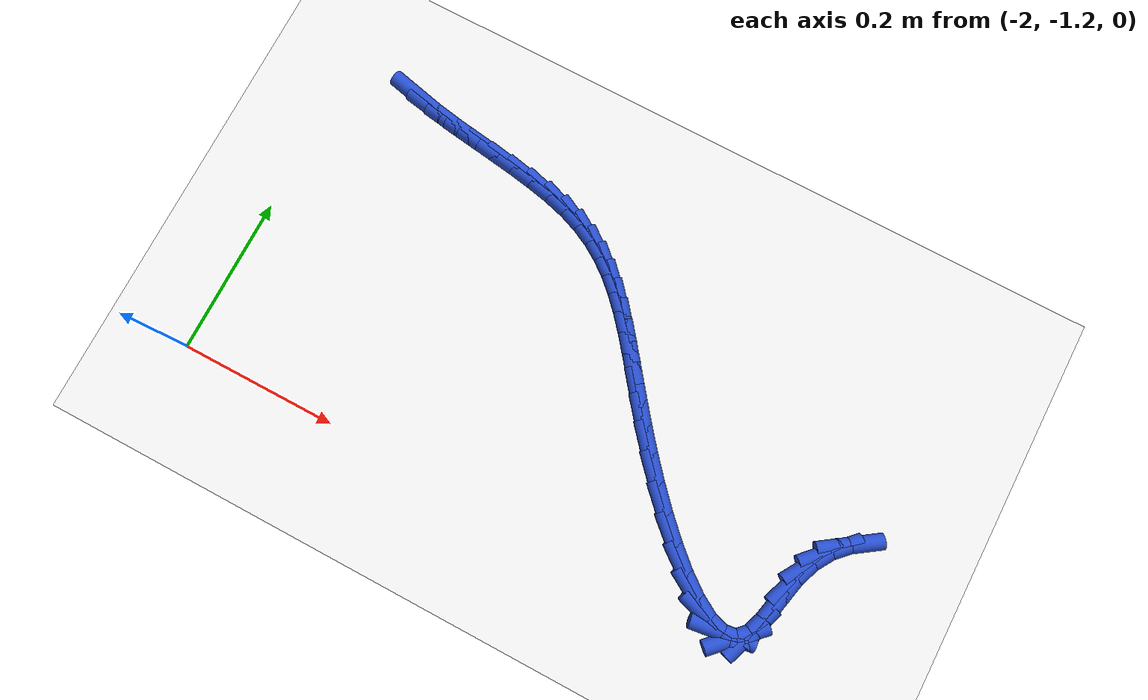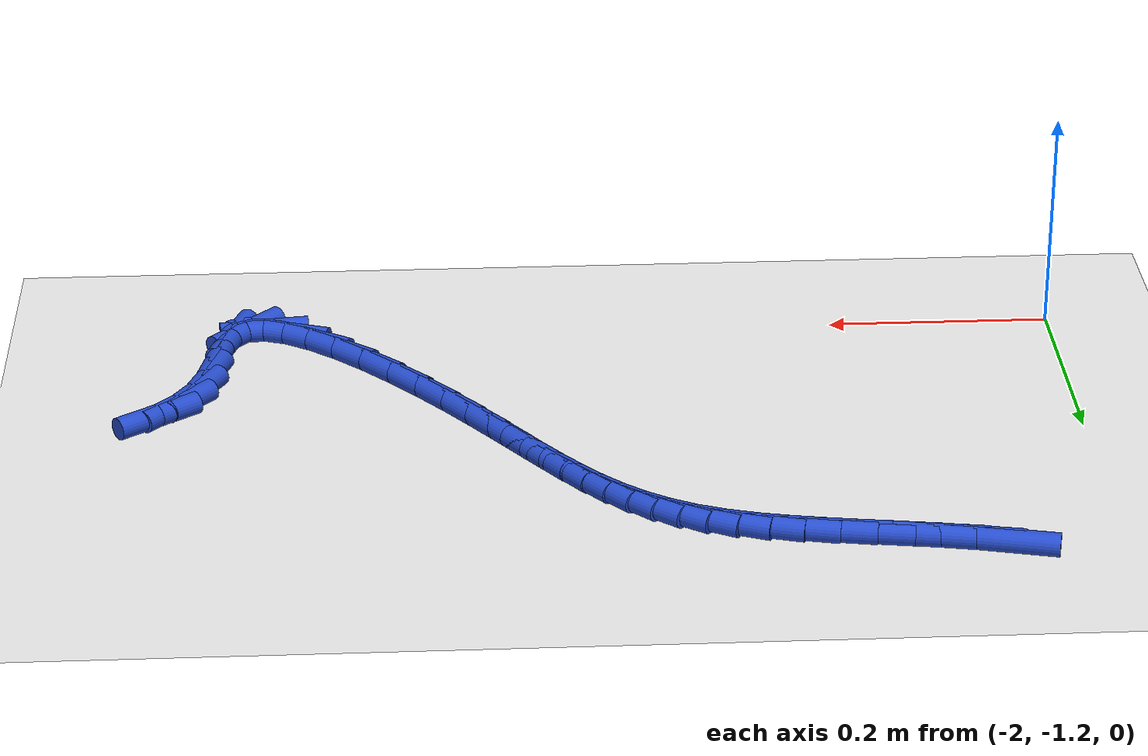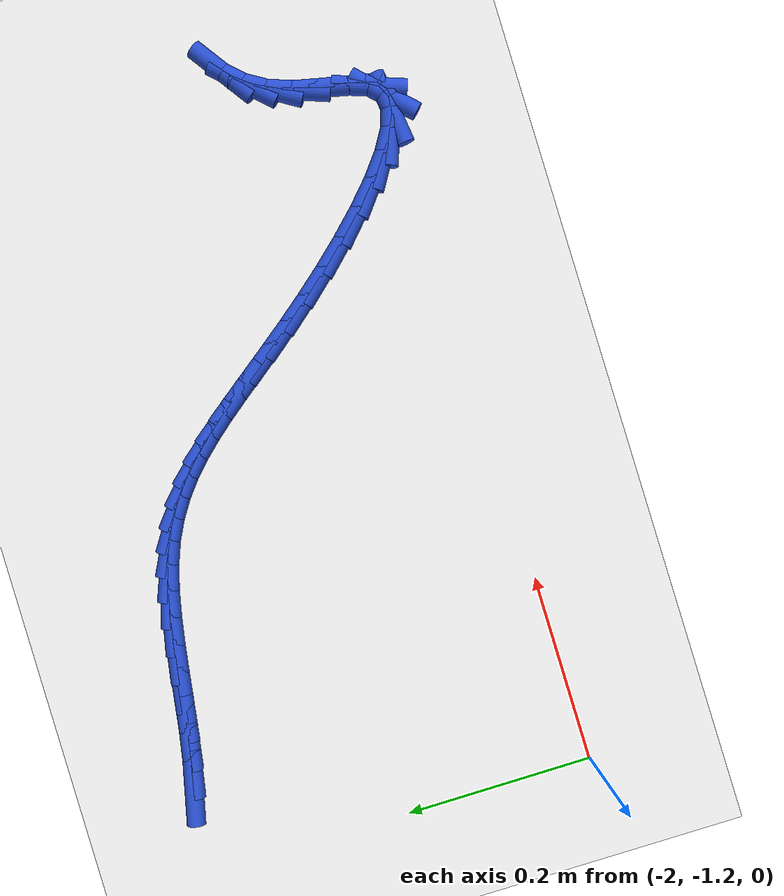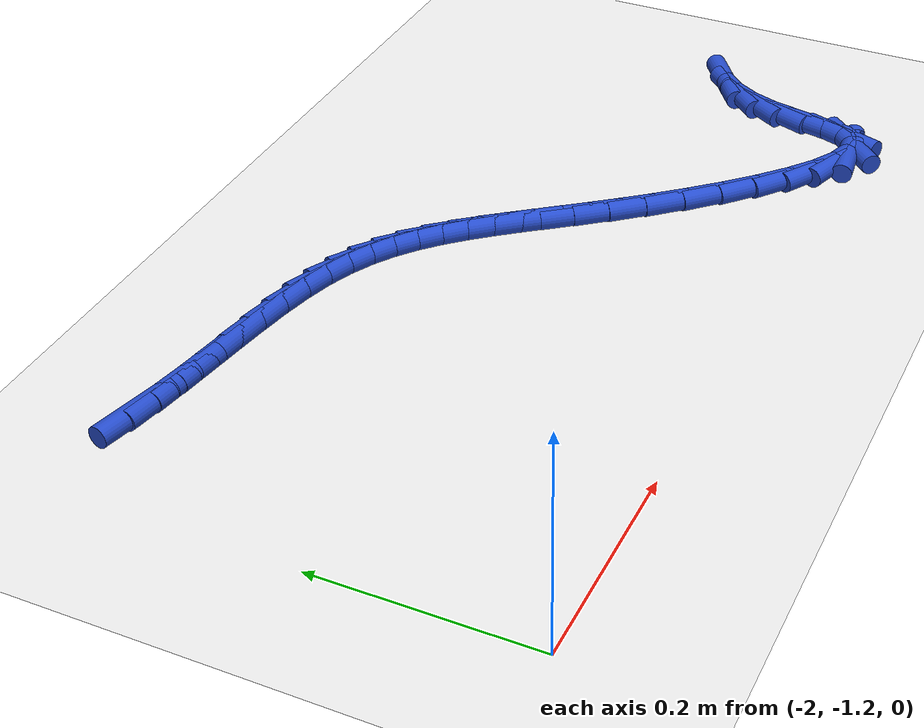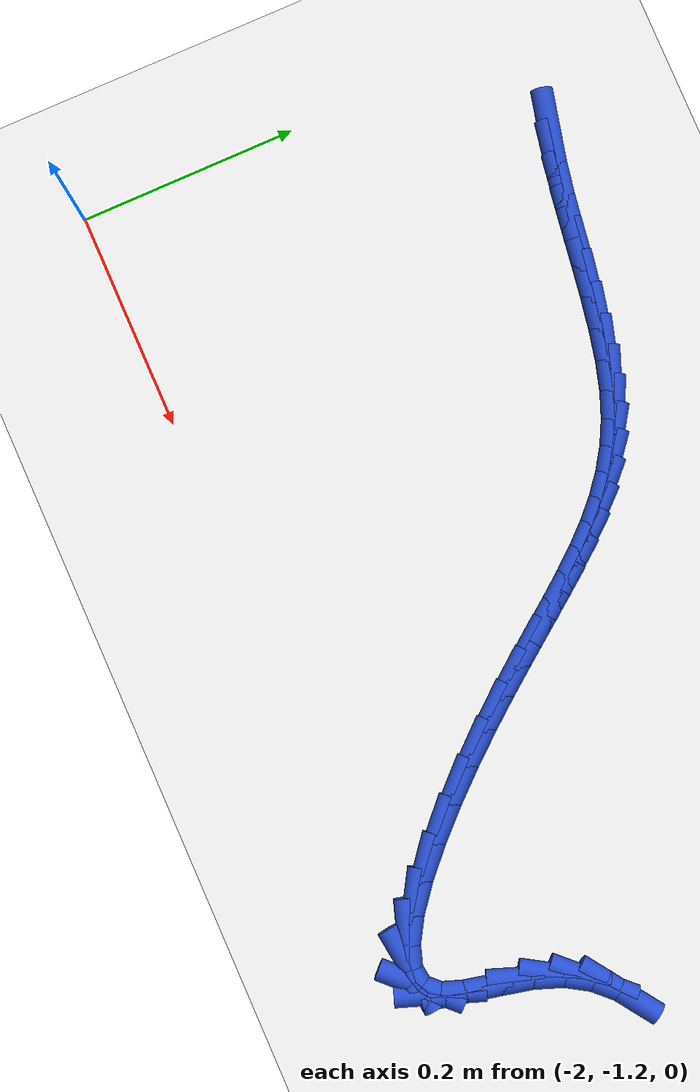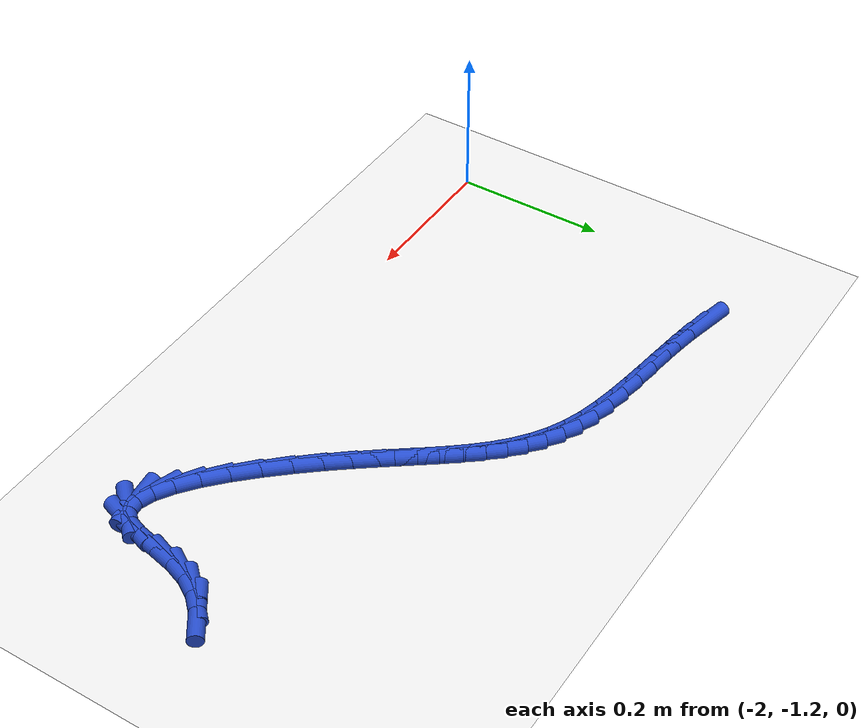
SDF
<sdf version="1.6">
 <world name="default">
  <model name="ground_plane">
   <static>1</static>
   <link name="link">
    <collision name="collision">
     <geometry><plane><normal>0 0 1</normal><size>100 100</size></plane></geometry>
     <surface><friction><ode><mu>100</mu><mu2>50</mu2></ode></friction></surface>
    </collision>
    <visual name="visual">
     <cast_shadows>0</cast_shadows>
     <geometry><plane><normal>0 0 1</normal><size>100 100</size></plane></geometry>
     <material>
      <script><uri>file://media/materials/scripts/gazebo.material</uri><name>Gazebo/WhiteGlow</name></script>
     </material>
    </visual>
   </link>
  </model>
  <model name="line">
   <link name="link_175">
    <pose>-1.9041331881102497 -0.7922231830267212 0.01 0 1.57 -0.22617244603391207</pose>
    <collision name="collision">
     <geometry><cylinder><radius>0.01</radius><length>0.08</length></cylinder></geometry>
    </collision>
    <visual name="visual">
     <material>
      <script><name>Gazebo/Blue</name><uri>file://media/materials/scripts/gazebo.material</uri></script>
     </material>
     <geometry><cylinder><radius>0.01</radius><length>0.08</length></cylinder></geometry>
    </visual>
   </link>
   <link name="link_176">
    <pose>-1.8768766352825816 -0.798495176550372 0.01 0 1.57 -0.17828670699968482</pose>
    <collision name="collision">
     <geometry><cylinder><radius>0.01</radius><length>0.08</length></cylinder></geometry>
    </collision>
    <visual name="visual">
     <material>
      <script><name>Gazebo/Blue</name><uri>file://media/materials/scripts/gazebo.material</uri></script>
     </material>
     <geometry><cylinder><radius>0.01</radius><length>0.08</length></cylinder></geometry>
    </visual>
   </link>
   <link name="link_177">
    <pose>-1.84799880047814 -0.8036989639373957 0.01 0 1.57 -0.15081512770257063</pose>
    <collision name="collision">
     <geometry><cylinder><radius>0.01</radius><length>0.08</length></cylinder></geometry>
    </collision>
    <visual name="visual">
     <material>
      <script><name>Gazebo/Blue</name><uri>file://media/materials/scripts/gazebo.material</uri></script>
     </material>
     <geometry><cylinder><radius>0.01</radius><length>0.08</length></cylinder></geometry>
    </visual>
   </link>
   <link name="link_178">
    <pose>-1.8180852195871924 -0.8082449029369413 0.01 0 1.57 -0.14063047050229913</pose>
    <collision name="collision">
     <geometry><cylinder><radius>0.01</radius><length>0.08</length></cylinder></geometry>
    </collision>
    <visual name="visual">
     <material>
      <script><name>Gazebo/Blue</name><uri>file://media/materials/scripts/gazebo.material</uri></script>
     </material>
     <geometry><cylinder><radius>0.01</radius><length>0.08</length></cylinder></geometry>
    </visual>
   </link>
   <link name="link_179">
    <pose>-1.7877214285000047 -0.8125433512981581 0.01 0 1.57 -0.14652879162054316</pose>
    <collision name="collision">
     <geometry><cylinder><radius>0.01</radius><length>0.08</length></cylinder></geometry>
    </collision>
    <visual name="visual">
     <material>
      <script><name>Gazebo/Blue</name><uri>file://media/materials/scripts/gazebo.material</uri></script>
     </material>
     <geometry><cylinder><radius>0.01</radius><length>0.08</length></cylinder></geometry>
    </visual>
   </link>
   <link name="link_180">
    <pose>-1.7574929631068439 -0.8170046667701956 0.01 0 1.57 -0.16899113190102963</pose>
    <collision name="collision">
     <geometry><cylinder><radius>0.01</radius><length>0.08</length></cylinder></geometry>
    </collision>
    <visual name="visual">
     <material>
      <script><name>Gazebo/Blue</name><uri>file://media/materials/scripts/gazebo.material</uri></script>
     </material>
     <geometry><cylinder><radius>0.01</radius><length>0.08</length></cylinder></geometry>
    </visual>
   </link>
   <link name="link_181">
    <pose>-1.7279853592979764 -0.8220392071022032 0.01 0 1.57 -0.2102458590113233</pose>
    <collision name="collision">
     <geometry><cylinder><radius>0.01</radius><length>0.08</length></cylinder></geometry>
    </collision>
    <visual name="visual">
     <material>
      <script><name>Gazebo/Blue</name><uri>file://media/materials/scripts/gazebo.material</uri></script>
     </material>
     <geometry><cylinder><radius>0.01</radius><length>0.08</length></cylinder></geometry>
    </visual>
   </link>
   <link name="link_182">
    <pose>-1.699784152963671 -0.8280573300433302 0.01 0 1.57 -0.27461051349990134</pose>
    <collision name="collision">
     <geometry><cylinder><radius>0.01</radius><length>0.08</length></cylinder></geometry>
    </collision>
    <visual name="visual">
     <material>
      <script><name>Gazebo/Blue</name><uri>file://media/materials/scripts/gazebo.material</uri></script>
     </material>
     <geometry><cylinder><radius>0.01</radius><length>0.08</length></cylinder></geometry>
    </visual>
   </link>
   <link name="link_183">
    <pose>-1.6734748799941932 -0.8354693933427255 0.01 0 1.57 -0.3664513023909454</pose>
    <collision name="collision">
     <geometry><cylinder><radius>0.01</radius><length>0.08</length></cylinder></geometry>
    </collision>
    <visual name="visual">
     <material>
      <script><name>Gazebo/Blue</name><uri>file://media/materials/scripts/gazebo.material</uri></script>
     </material>
     <geometry><cylinder><radius>0.01</radius><length>0.08</length></cylinder></geometry>
    </visual>
   </link>
   <link name="link_184">
    <pose>-1.6495619343743506 -0.8446468518759421 0.01 0 1.57 -0.4710945352729914</pose>
    <collision name="collision">
     <geometry><cylinder><radius>0.01</radius><length>0.08</length></cylinder></geometry>
    </collision>
    <visual name="visual">
     <material>
      <script><name>Gazebo/Blue</name><uri>file://media/materials/scripts/gazebo.material</uri></script>
     </material>
     <geometry><cylinder><radius>0.01</radius><length>0.08</length></cylinder></geometry>
    </visual>
   </link>
   <link name="link_185">
    <pose>-1.6279309046098964 -0.8556644789062834 0.01 0 1.57 -0.5749276775282997</pose>
    <collision name="collision">
     <geometry><cylinder><radius>0.01</radius><length>0.08</length></cylinder></geometry>
    </collision>
    <visual name="visual">
     <material>
      <script><name>Gazebo/Blue</name><uri>file://media/materials/scripts/gazebo.material</uri></script>
     </material>
     <geometry><cylinder><radius>0.01</radius><length>0.08</length></cylinder></geometry>
    </visual>
   </link>
   <link name="link_186">
    <pose>-1.6081823678834233 -0.8684604011712442 0.01 0 1.57 -0.6713278846026134</pose>
    <collision name="collision">
     <geometry><cylinder><radius>0.01</radius><length>0.08</length></cylinder></geometry>
    </collision>
    <visual name="visual">
     <material>
      <script><name>Gazebo/Blue</name><uri>file://media/materials/scripts/gazebo.material</uri></script>
     </material>
     <geometry><cylinder><radius>0.01</radius><length>0.08</length></cylinder></geometry>
    </visual>
   </link>
   <link name="link_187">
    <pose>-1.5899153844016647 -0.8829720181057029 0.01 0 1.57 -0.7547742807342931</pose>
    <collision name="collision">
     <geometry><cylinder><radius>0.01</radius><length>0.08</length></cylinder></geometry>
    </collision>
    <visual name="visual">
     <material>
      <script><name>Gazebo/Blue</name><uri>file://media/materials/scripts/gazebo.material</uri></script>
     </material>
     <geometry><cylinder><radius>0.01</radius><length>0.08</length></cylinder></geometry>
    </visual>
   </link>
   <link name="link_188">
    <pose>-1.5727290143713522 -0.8991367291445373 0.01 0 1.57 -0.8218221791945882</pose>
    <collision name="collision">
     <geometry><cylinder><radius>0.01</radius><length>0.08</length></cylinder></geometry>
    </collision>
    <visual name="visual">
     <material>
      <script><name>Gazebo/Blue</name><uri>file://media/materials/scripts/gazebo.material</uri></script>
     </material>
     <geometry><cylinder><radius>0.01</radius><length>0.08</length></cylinder></geometry>
    </visual>
   </link>
   <link name="link_189">
    <pose>-1.5562223179992172 -0.916891933722625 0.01 0 1.57 -0.8712201741310273</pose>
    <collision name="collision">
     <geometry><cylinder><radius>0.01</radius><length>0.08</length></cylinder></geometry>
    </collision>
    <visual name="visual">
     <material>
      <script><name>Gazebo/Blue</name><uri>file://media/materials/scripts/gazebo.material</uri></script>
     </material>
     <geometry><cylinder><radius>0.01</radius><length>0.08</length></cylinder></geometry>
    </visual>
   </link>
   <link name="link_190">
    <pose>-1.5399943554919928 -0.9361750312748451 0.01 0 1.57 -0.9034024108898399</pose>
    <collision name="collision">
     <geometry><cylinder><radius>0.01</radius><length>0.08</length></cylinder></geometry>
    </collision>
    <visual name="visual">
     <material>
      <script><name>Gazebo/Blue</name><uri>file://media/materials/scripts/gazebo.material</uri></script>
     </material>
     <geometry><cylinder><radius>0.01</radius><length>0.08</length></cylinder></geometry>
    </visual>
   </link>
   <link name="link_191">
    <pose>-1.5236441870564108 -0.9569234212360739 0.01 0 1.57 -0.9198253144303006</pose>
    <collision name="collision">
     <geometry><cylinder><radius>0.01</radius><length>0.08</length></cylinder></geometry>
    </collision>
    <visual name="visual">
     <material>
      <script><name>Gazebo/Blue</name><uri>file://media/materials/scripts/gazebo.material</uri></script>
     </material>
     <geometry><cylinder><radius>0.01</radius><length>0.08</length></cylinder></geometry>
    </visual>
   </link>
   <link name="link_192">
    <pose>-1.5067708728992035 -0.9790745030411905 0.01 0 1.57 -0.9224357655958737</pose>
    <collision name="collision">
     <geometry><cylinder><radius>0.01</radius><length>0.08</length></cylinder></geometry>
    </collision>
    <visual name="visual">
     <material>
      <script><name>Gazebo/Blue</name><uri>file://media/materials/scripts/gazebo.material</uri></script>
     </material>
     <geometry><cylinder><radius>0.01</radius><length>0.08</length></cylinder></geometry>
    </visual>
   </link>
   <link name="link_193">
    <pose>-1.488973473227103 -1.0025656761250723 0.01 0 1.57 -0.9133375359592297</pose>
    <collision name="collision">
     <geometry><cylinder><radius>0.01</radius><length>0.08</length></cylinder></geometry>
    </collision>
    <visual name="visual">
     <material>
      <script><name>Gazebo/Blue</name><uri>file://media/materials/scripts/gazebo.material</uri></script>
     </material>
     <geometry><cylinder><radius>0.01</radius><length>0.08</length></cylinder></geometry>
    </visual>
   </link>
   <link name="link_194">
    <pose>-1.469851048246841 -1.0273343399225976 0.01 0 1.57 -0.8946127307249836</pose>
    <collision name="collision">
     <geometry><cylinder><radius>0.01</radius><length>0.08</length></cylinder></geometry>
    </collision>
    <visual name="visual">
     <material>
      <script><name>Gazebo/Blue</name><uri>file://media/materials/scripts/gazebo.material</uri></script>
     </material>
     <geometry><cylinder><radius>0.01</radius><length>0.08</length></cylinder></geometry>
    </visual>
   </link>
   <link name="link_195">
    <pose>-1.4490026581651498 -1.053317893868644 0.01 0 1.57 -0.8682978058360171</pose>
    <collision name="collision">
     <geometry><cylinder><radius>0.01</radius><length>0.08</length></cylinder></geometry>
    </collision>
    <visual name="visual">
     <material>
      <script><name>Gazebo/Blue</name><uri>file://media/materials/scripts/gazebo.material</uri></script>
     </material>
     <geometry><cylinder><radius>0.01</radius><length>0.08</length></cylinder></geometry>
    </visual>
   </link>
   <link name="link_196">
    <pose>-1.4260664939842718 -1.0804109931022996 0.01 0 1.57 -0.8362317727073095</pose>
    <collision name="collision">
     <geometry><cylinder><radius>0.01</radius><length>0.08</length></cylinder></geometry>
    </collision>
    <visual name="visual">
     <material>
      <script><name>Gazebo/Blue</name><uri>file://media/materials/scripts/gazebo.material</uri></script>
     </material>
     <geometry><cylinder><radius>0.01</radius><length>0.08</length></cylinder></geometry>
    </visual>
   </link>
   <link name="link_197">
    <pose>-1.4013560723744902 -1.1077706047158693 0.01 0 1.57 -0.7962028918714009</pose>
    <collision name="collision">
     <geometry><cylinder><radius>0.01</radius><length>0.08</length></cylinder></geometry>
    </collision>
    <visual name="visual">
     <material>
      <script><name>Gazebo/Blue</name><uri>file://media/materials/scripts/gazebo.material</uri></script>
     </material>
     <geometry><cylinder><radius>0.01</radius><length>0.08</length></cylinder></geometry>
    </visual>
   </link>
   <link name="link_198">
    <pose>-1.3757549180925988 -1.1339310507995681 0.01 0 1.57 -0.7423321100008328</pose>
    <collision name="collision">
     <geometry><cylinder><radius>0.01</radius><length>0.08</length></cylinder></geometry>
    </collision>
    <visual name="visual">
     <material>
      <script><name>Gazebo/Blue</name><uri>file://media/materials/scripts/gazebo.material</uri></script>
     </material>
     <geometry><cylinder><radius>0.01</radius><length>0.08</length></cylinder></geometry>
    </visual>
   </link>
   <link name="link_199">
    <pose>-1.3501644331889753 -1.1574071252864393 0.01 0 1.57 -0.663869119885076</pose>
    <collision name="collision">
     <geometry><cylinder><radius>0.01</radius><length>0.08</length></cylinder></geometry>
    </collision>
    <visual name="visual">
     <material>
      <script><name>Gazebo/Blue</name><uri>file://media/materials/scripts/gazebo.material</uri></script>
     </material>
     <geometry><cylinder><radius>0.01</radius><length>0.08</length></cylinder></geometry>
    </visual>
   </link>
   <link name="link_200">
    <pose>-1.325486019714 -1.1767136221095256 0.01 0 1.57 -0.5382540291950543</pose>
    <collision name="collision">
     <geometry><cylinder><radius>0.01</radius><length>0.08</length></cylinder></geometry>
    </collision>
    <visual name="visual">
     <material>
      <script><name>Gazebo/Blue</name><uri>file://media/materials/scripts/gazebo.material</uri></script>
     </material>
     <geometry><cylinder><radius>0.01</radius><length>0.08</length></cylinder></geometry>
    </visual>
   </link>
   <link name="link_201">
    <pose>-1.302621079718051 -1.190365335201871 0.01 0 1.57 -0.3125680618607001</pose>
    <collision name="collision">
     <geometry><cylinder><radius>0.01</radius><length>0.08</length></cylinder></geometry>
    </collision>
    <visual name="visual">
     <material>
      <script><name>Gazebo/Blue</name><uri>file://media/materials/scripts/gazebo.material</uri></script>
     </material>
     <geometry><cylinder><radius>0.01</radius><length>0.08</length></cylinder></geometry>
    </visual>
   </link>
   <link name="link_202">
    <pose>-1.2824710152515075 -1.19687705849652 0.01 0 1.57 0.12713801450683454</pose>
    <collision name="collision">
     <geometry><cylinder><radius>0.01</radius><length>0.08</length></cylinder></geometry>
    </collision>
    <visual name="visual">
     <material>
      <script><name>Gazebo/Blue</name><uri>file://media/materials/scripts/gazebo.material</uri></script>
     </material>
     <geometry><cylinder><radius>0.01</radius><length>0.08</length></cylinder></geometry>
    </visual>
   </link>
   <link name="link_203">
    <pose>-1.2659372283647483 -1.1947635859265162 0.01 0 1.57 0.7929412029568748</pose>
    <collision name="collision">
     <geometry><cylinder><radius>0.01</radius><length>0.08</length></cylinder></geometry>
    </collision>
    <visual name="visual">
     <material>
      <script><name>Gazebo/Blue</name><uri>file://media/materials/scripts/gazebo.material</uri></script>
     </material>
     <geometry><cylinder><radius>0.01</radius><length>0.08</length></cylinder></geometry>
    </visual>
   </link>
   <link name="link_204">
    <pose>-1.2539119094792477 -1.1825554698152627 0.01 0 1.57 1.2317353879118045</pose>
    <collision name="collision">
     <geometry><cylinder><radius>0.01</radius><length>0.08</length></cylinder></geometry>
    </collision>
    <visual name="visual">
     <material>
      <script><name>Gazebo/Blue</name><uri>file://media/materials/scripts/gazebo.material</uri></script>
     </material>
     <geometry><cylinder><radius>0.01</radius><length>0.08</length></cylinder></geometry>
    </visual>
   </link>
   <link name="link_205">
    <pose>-1.24618994895782 -1.1606604204618127 0.01 0 1.57 1.36515127126312</pose>
    <collision name="collision">
     <geometry><cylinder><radius>0.01</radius><length>0.08</length></cylinder></geometry>
    </collision>
    <visual name="visual">
     <material>
      <script><name>Gazebo/Blue</name><uri>file://media/materials/scripts/gazebo.material</uri></script>
     </material>
     <geometry><cylinder><radius>0.01</radius><length>0.08</length></cylinder></geometry>
    </visual>
   </link>
   <link name="link_206">
    <pose>-1.2404443629854354 -1.1331160514034697 0.01 0 1.57 1.353727339225912</pose>
    <collision name="collision">
     <geometry><cylinder><radius>0.01</radius><length>0.08</length></cylinder></geometry>
    </collision>
    <visual name="visual">
     <material>
      <script><name>Gazebo/Blue</name><uri>file://media/materials/scripts/gazebo.material</uri></script>
     </material>
     <geometry><cylinder><radius>0.01</radius><length>0.08</length></cylinder></geometry>
    </visual>
   </link>
   <link name="link_207">
    <pose>-1.2341056633730525 -1.1043748299052953 0.01 0 1.57 1.2225194343432393</pose>
    <collision name="collision">
     <geometry><cylinder><radius>0.01</radius><length>0.08</length></cylinder></geometry>
    </collision>
    <visual name="visual">
     <material>
      <script><name>Gazebo/Blue</name><uri>file://media/materials/scripts/gazebo.material</uri></script>
     </material>
     <geometry><cylinder><radius>0.01</radius><length>0.08</length></cylinder></geometry>
    </visual>
   </link>
   <link name="link_208">
    <pose>-1.224759120960297 -1.078632240861838 0.01 0 1.57 1.0215160660844407</pose>
    <collision name="collision">
     <geometry><cylinder><radius>0.01</radius><length>0.08</length></cylinder></geometry>
    </collision>
    <visual name="visual">
     <material>
      <script><name>Gazebo/Blue</name><uri>file://media/materials/scripts/gazebo.material</uri></script>
     </material>
     <geometry><cylinder><radius>0.01</radius><length>0.08</length></cylinder></geometry>
    </visual>
   </link>
   <link name="link_209">
    <pose>-1.211683741286292 -1.0572712679401344 0.01 0 1.57 0.8105510347944256</pose>
    <collision name="collision">
     <geometry><cylinder><radius>0.01</radius><length>0.08</length></cylinder></geometry>
    </collision>
    <visual name="visual">
     <material>
      <script><name>Gazebo/Blue</name><uri>file://media/materials/scripts/gazebo.material</uri></script>
     </material>
     <geometry><cylinder><radius>0.01</radius><length>0.08</length></cylinder></geometry>
    </visual>
   </link>
   <link name="link_210">
    <pose>-1.1952032372410595 -1.0399401244753155 0.01 0 1.57 0.610590507043973</pose>
    <collision name="collision">
     <geometry><cylinder><radius>0.01</radius><length>0.08</length></cylinder></geometry>
    </collision>
    <visual name="visual">
     <material>
      <script><name>Gazebo/Blue</name><uri>file://media/materials/scripts/gazebo.material</uri></script>
     </material>
     <geometry><cylinder><radius>0.01</radius><length>0.08</length></cylinder></geometry>
    </visual>
   </link>
  </model>
 </world>
</sdf>
